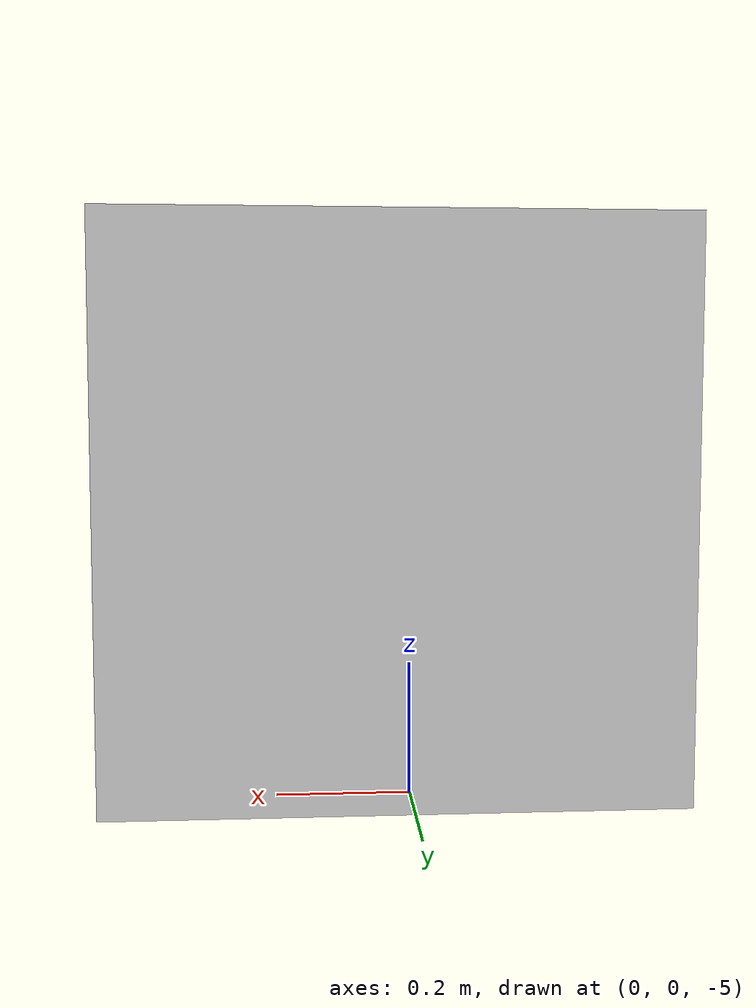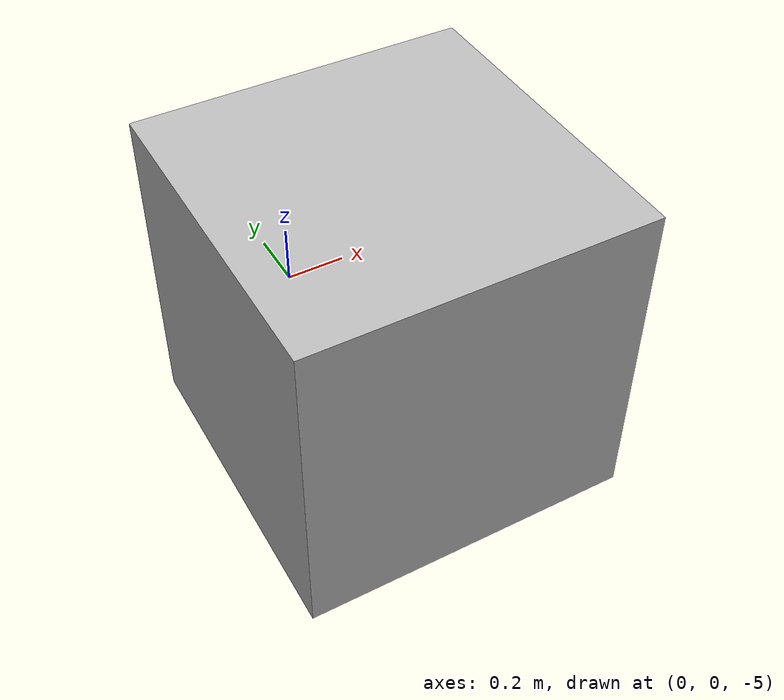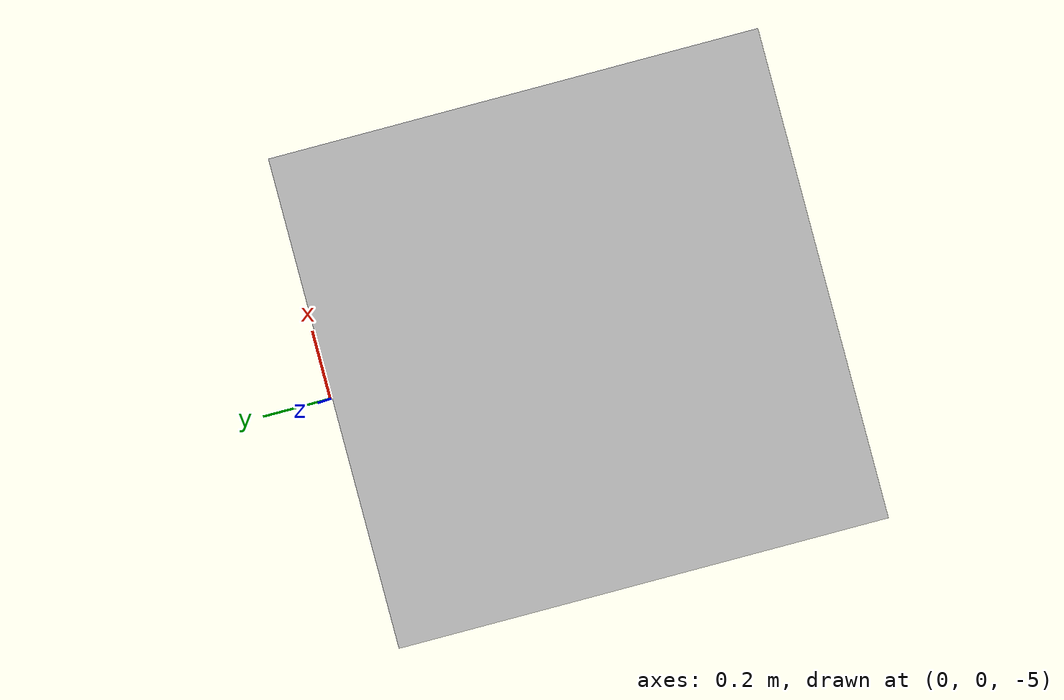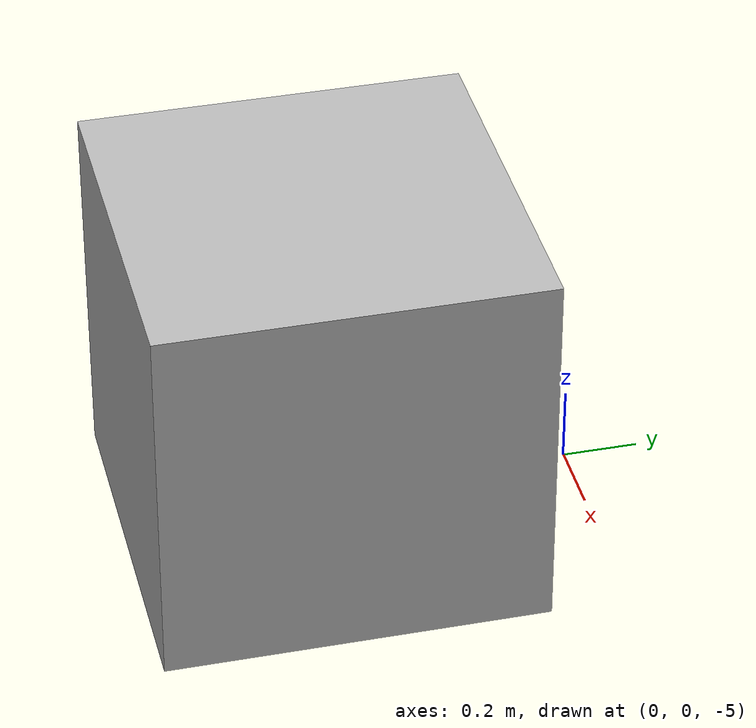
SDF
<?xml version="1.0"?>
<sdf version="1.6">
  <model name="ArucoBox">
    <static>true</static>
    <link name="link">
      <visual name="visual">
        <pose>0 -0.6697413 -4.5966935 0 0 0</pose>
        <geometry>
          <mesh>
            <uri>model://arucobox/meshes/ArucoBox.obj</uri>
            <scale>1 1 1</scale>
          </mesh>
        </geometry>
      </visual>
      <collision name="collision">
        <pose>0 -0.6697413 -4.5966935 0 0 0</pose>
        <geometry>
          <mesh>
            <uri>model://arucobox/meshes/ArucoBox.obj</uri>
            <scale>1 1 1</scale>
          </mesh>
        </geometry>
      </collision>
    </link>
  </model>
</sdf>
